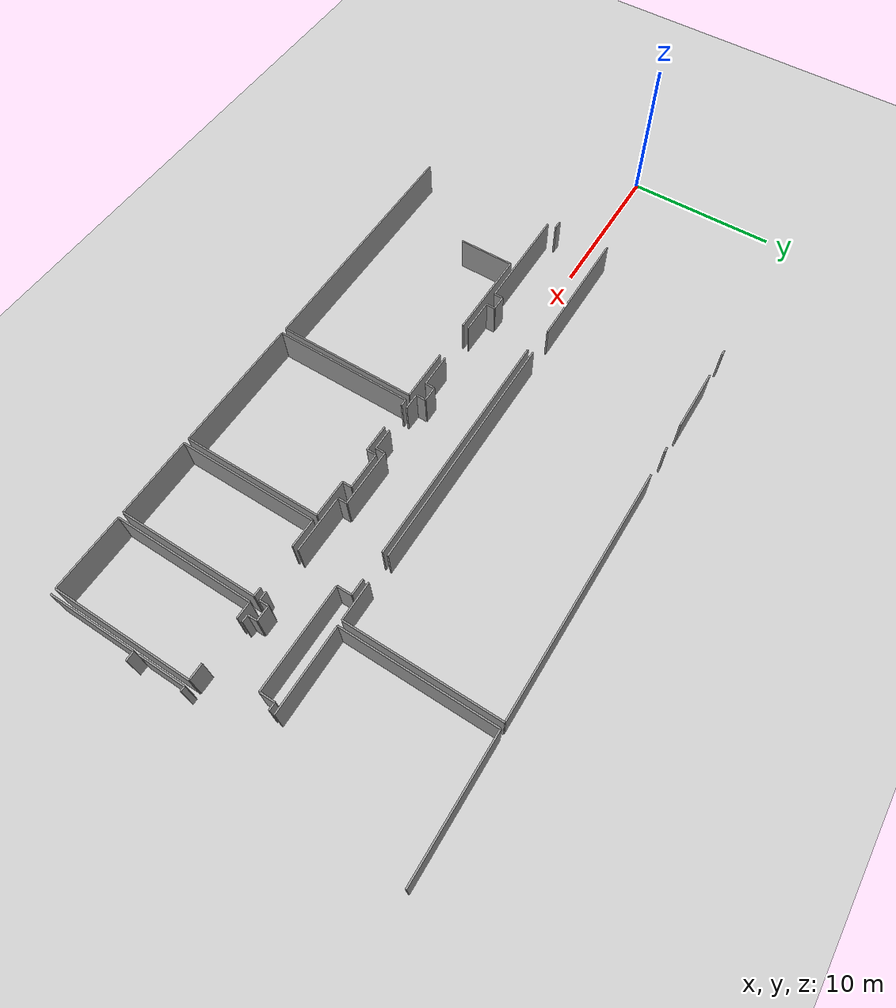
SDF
<sdf version="1.6">
 <world name="default">
  <model name="ground_plane">
   <static>1</static>
   <link name="link">
    <collision name="collision">
     <geometry><plane><normal>0 0 1</normal><size>100 100</size></plane></geometry>
     <surface><friction><ode><mu>100</mu><mu2>50</mu2></ode></friction></surface>
    </collision>
    <visual name="visual">
     <cast_shadows>0</cast_shadows>
     <geometry><plane><normal>0 0 1</normal><size>100 100</size></plane></geometry>
     <material>
      <script><uri>file://media/materials/scripts/gazebo.material</uri><name>Gazebo/Grey</name></script>
     </material>
    </visual>
   </link>
  </model>
  <model name="0510034689_Layout1">
   <static>1</static>
   <link name="Wall_251">
    <collision name="Wall_251_Collision">
     <geometry><box><size>0.60574832699 0.1 2.5</size></box></geometry>
     <pose>0.302874163495 0 1.25 0 0 0</pose>
    </collision>
    <visual name="Wall_251_Visual">
     <pose>0.302874163495 0 1.25 0 0 0</pose>
     <geometry><box><size>0.60574832699 0.1 2.5</size></box></geometry>
     <material>
      <script><uri>file://media/materials/scripts/gazebo.material</uri><name>Gazebo/Grey</name></script>
      <ambient>1 1 1 1</ambient>
     </material>
    </visual>
    <pose>65.0610253683 -14.4321157026 0 0 0 3.14159265359</pose>
   </link>
   <link name="Wall_255">
    <collision name="Wall_255_Collision">
     <geometry><box><size>15.7851186178 0.1 2.5</size></box></geometry>
     <pose>7.89255930889 0 1.25 0 0 0</pose>
    </collision>
    <visual name="Wall_255_Visual">
     <pose>7.89255930889 0 1.25 0 0 0</pose>
     <geometry><box><size>15.7851186178 0.1 2.5</size></box></geometry>
     <material>
      <script><uri>file://media/materials/scripts/gazebo.material</uri><name>Gazebo/Grey</name></script>
      <ambient>1 1 1 1</ambient>
     </material>
    </visual>
    <pose>74.6065427926 -11.0329195597 0 0 0 0.0</pose>
   </link>
   <link name="Wall_256">
    <collision name="Wall_256_Collision">
     <geometry><box><size>1.05552248807 0.1 2.5</size></box></geometry>
     <pose>0.527761244037 0 1.25 0 0 0</pose>
    </collision>
    <visual name="Wall_256_Visual">
     <pose>0.527761244037 0 1.25 0 0 0</pose>
     <geometry><box><size>1.05552248807 0.1 2.5</size></box></geometry>
     <material>
      <script><uri>file://media/materials/scripts/gazebo.material</uri><name>Gazebo/Grey</name></script>
      <ambient>1 1 1 1</ambient>
     </material>
    </visual>
    <pose>92.1903773204 -11.0329195597 0 0 0 0.0</pose>
   </link>
   <link name="Wall_257">
    <collision name="Wall_257_Collision">
     <geometry><box><size>0.978867975293 0.1 2.5</size></box></geometry>
     <pose>0.489433987646 0 1.25 0 0 0</pose>
    </collision>
    <visual name="Wall_257_Visual">
     <pose>0.489433987646 0 1.25 0 0 0</pose>
     <geometry><box><size>0.978867975293 0.1 2.5</size></box></geometry>
     <material>
      <script><uri>file://media/materials/scripts/gazebo.material</uri><name>Gazebo/Grey</name></script>
      <ambient>1 1 1 1</ambient>
     </material>
    </visual>
    <pose>93.2458998085 -11.0329195597 0 0 0 -1.57079632679</pose>
   </link>
   <link name="Wall_258">
    <collision name="Wall_258_Collision">
     <geometry><box><size>6.6311230013 0.1 2.5</size></box></geometry>
     <pose>3.31556150065 0 1.25 0 0 0</pose>
    </collision>
    <visual name="Wall_258_Visual">
     <pose>3.31556150065 0 1.25 0 0 0</pose>
     <geometry><box><size>6.6311230013 0.1 2.5</size></box></geometry>
     <material>
      <script><uri>file://media/materials/scripts/gazebo.material</uri><name>Gazebo/Grey</name></script>
      <ambient>1 1 1 1</ambient>
     </material>
    </visual>
    <pose>93.2458998085 -12.011787535 0 0 0 0.0</pose>
   </link>
   <link name="Wall_259">
    <collision name="Wall_259_Collision">
     <geometry><box><size>0.978867975293 0.1 2.5</size></box></geometry>
     <pose>0.489433987646 0 1.25 0 0 0</pose>
    </collision>
    <visual name="Wall_259_Visual">
     <pose>0.489433987646 0 1.25 0 0 0</pose>
     <geometry><box><size>0.978867975293 0.1 2.5</size></box></geometry>
     <material>
      <script><uri>file://media/materials/scripts/gazebo.material</uri><name>Gazebo/Grey</name></script>
      <ambient>1 1 1 1</ambient>
     </material>
    </visual>
    <pose>99.8770228098 -12.011787535 0 0 0 1.57079632679</pose>
   </link>
   <link name="Wall_260">
    <collision name="Wall_260_Collision">
     <geometry><box><size>0.479852173549 0.1 2.5</size></box></geometry>
     <pose>0.239926086774 0 1.25 0 0 0</pose>
    </collision>
    <visual name="Wall_260_Visual">
     <pose>0.239926086774 0 1.25 0 0 0</pose>
     <geometry><box><size>0.479852173549 0.1 2.5</size></box></geometry>
     <material>
      <script><uri>file://media/materials/scripts/gazebo.material</uri><name>Gazebo/Grey</name></script>
      <ambient>1 1 1 1</ambient>
     </material>
    </visual>
    <pose>99.8770228098 -11.0329195597 0 0 0 0.0</pose>
   </link>
   <link name="Wall_271">
    <collision name="Wall_271_Collision">
     <geometry><box><size>0.475664095864 0.1 2.5</size></box></geometry>
     <pose>0.237832047932 0 1.25 0 0 0</pose>
    </collision>
    <visual name="Wall_271_Visual">
     <pose>0.237832047932 0 1.25 0 0 0</pose>
     <geometry><box><size>0.475664095864 0.1 2.5</size></box></geometry>
     <material>
      <script><uri>file://media/materials/scripts/gazebo.material</uri><name>Gazebo/Grey</name></script>
      <ambient>1 1 1 1</ambient>
     </material>
    </visual>
    <pose>97.4929913154 -15.0398946127 0 0 0 3.14159265359</pose>
   </link>
   <link name="Wall_272">
    <collision name="Wall_272_Collision">
     <geometry><box><size>0.6207238775 0.1 2.5</size></box></geometry>
     <pose>0.31036193875 0 1.25 0 0 0</pose>
    </collision>
    <visual name="Wall_272_Visual">
     <pose>0.31036193875 0 1.25 0 0 0</pose>
     <geometry><box><size>0.6207238775 0.1 2.5</size></box></geometry>
     <material>
      <script><uri>file://media/materials/scripts/gazebo.material</uri><name>Gazebo/Grey</name></script>
      <ambient>1 1 1 1</ambient>
     </material>
    </visual>
    <pose>97.0173272196 -15.0398946127 0 0 0 1.57079632679</pose>
   </link>
   <link name="Wall_273">
    <collision name="Wall_273_Collision">
     <geometry><box><size>0.959704347098 0.1 2.5</size></box></geometry>
     <pose>0.479852173549 0 1.25 0 0 0</pose>
    </collision>
    <visual name="Wall_273_Visual">
     <pose>0.479852173549 0 1.25 0 0 0</pose>
     <geometry><box><size>0.959704347098 0.1 2.5</size></box></geometry>
     <material>
      <script><uri>file://media/materials/scripts/gazebo.material</uri><name>Gazebo/Grey</name></script>
      <ambient>1 1 1 1</ambient>
     </material>
    </visual>
    <pose>97.0173272196 -14.4191707352 0 0 0 3.14159265359</pose>
   </link>
   <link name="Wall_274">
    <collision name="Wall_274_Collision">
     <geometry><box><size>0.60092569208 0.1 2.5</size></box></geometry>
     <pose>0.30046284604 0 1.25 0 0 0</pose>
    </collision>
    <visual name="Wall_274_Visual">
     <pose>0.30046284604 0 1.25 0 0 0</pose>
     <geometry><box><size>0.60092569208 0.1 2.5</size></box></geometry>
     <material>
      <script><uri>file://media/materials/scripts/gazebo.material</uri><name>Gazebo/Grey</name></script>
      <ambient>1 1 1 1</ambient>
     </material>
    </visual>
    <pose>96.0576228725 -14.4191707352 0 0 0 -1.57079632679</pose>
   </link>
   <link name="Wall_275">
    <collision name="Wall_275_Collision">
     <geometry><box><size>0.550668759859 0.1 2.5</size></box></geometry>
     <pose>0.27533437993 0 1.25 0 0 0</pose>
    </collision>
    <visual name="Wall_275_Visual">
     <pose>0.27533437993 0 1.25 0 0 0</pose>
     <geometry><box><size>0.550668759859 0.1 2.5</size></box></geometry>
     <material>
      <script><uri>file://media/materials/scripts/gazebo.material</uri><name>Gazebo/Grey</name></script>
      <ambient>1 1 1 1</ambient>
     </material>
    </visual>
    <pose>96.0576228725 -15.0200964273 0 0 0 3.14159265359</pose>
   </link>
   <link name="Wall_276">
    <collision name="Wall_276_Collision">
     <geometry><box><size>3.71380961506 0.1 2.5</size></box></geometry>
     <pose>1.85690480753 0 1.25 0 0 0</pose>
    </collision>
    <visual name="Wall_276_Visual">
     <pose>1.85690480753 0 1.25 0 0 0</pose>
     <geometry><box><size>3.71380961506 0.1 2.5</size></box></geometry>
     <material>
      <script><uri>file://media/materials/scripts/gazebo.material</uri><name>Gazebo/Grey</name></script>
      <ambient>1 1 1 1</ambient>
     </material>
    </visual>
    <pose>92.7085567504 -15.0200964273 0 0 0 3.14159265359</pose>
   </link>
   <link name="Wall_277">
    <collision name="Wall_277_Collision">
     <geometry><box><size>0.609174936005 0.1 2.5</size></box></geometry>
     <pose>0.304587468002 0 1.25 0 0 0</pose>
    </collision>
    <visual name="Wall_277_Visual">
     <pose>0.304587468002 0 1.25 0 0 0</pose>
     <geometry><box><size>0.609174936005 0.1 2.5</size></box></geometry>
     <material>
      <script><uri>file://media/materials/scripts/gazebo.material</uri><name>Gazebo/Grey</name></script>
      <ambient>1 1 1 1</ambient>
     </material>
    </visual>
    <pose>88.9947471353 -15.0200964273 0 0 0 1.57079632679</pose>
   </link>
   <link name="Wall_278">
    <collision name="Wall_278_Collision">
     <geometry><box><size>3.76178214128 0.1 2.5</size></box></geometry>
     <pose>1.88089107064 0 1.25 0 0 0</pose>
    </collision>
    <visual name="Wall_278_Visual">
     <pose>1.88089107064 0 1.25 0 0 0</pose>
     <geometry><box><size>3.76178214128 0.1 2.5</size></box></geometry>
     <material>
      <script><uri>file://media/materials/scripts/gazebo.material</uri><name>Gazebo/Grey</name></script>
      <ambient>1 1 1 1</ambient>
     </material>
    </visual>
    <pose>88.9947471353 -14.4109214913 0 0 0 3.14159265359</pose>
   </link>
   <link name="Wall_279">
    <collision name="Wall_279_Collision">
     <geometry><box><size>0.633288110555 0.1 2.5</size></box></geometry>
     <pose>0.316644055278 0 1.25 0 0 0</pose>
    </collision>
    <visual name="Wall_279_Visual">
     <pose>0.316644055278 0 1.25 0 0 0</pose>
     <geometry><box><size>0.633288110555 0.1 2.5</size></box></geometry>
     <material>
      <script><uri>file://media/materials/scripts/gazebo.material</uri><name>Gazebo/Grey</name></script>
      <ambient>1 1 1 1</ambient>
     </material>
    </visual>
    <pose>85.232964994 -14.4109214913 0 0 0 -1.57079632679</pose>
   </link>
   <link name="Wall_280">
    <collision name="Wall_280_Collision">
     <geometry><box><size>1.39145708299 0.1 2.5</size></box></geometry>
     <pose>0.695728541496 0 1.25 0 0 0</pose>
    </collision>
    <visual name="Wall_280_Visual">
     <pose>0.695728541496 0 1.25 0 0 0</pose>
     <geometry><box><size>1.39145708299 0.1 2.5</size></box></geometry>
     <material>
      <script><uri>file://media/materials/scripts/gazebo.material</uri><name>Gazebo/Grey</name></script>
      <ambient>1 1 1 1</ambient>
     </material>
    </visual>
    <pose>85.232964994 -15.0442096019 0 0 0 3.14159265359</pose>
   </link>
   <link name="Wall_281">
    <collision name="Wall_281_Collision">
     <geometry><box><size>1.07037112714 0.1 2.5</size></box></geometry>
     <pose>0.535185563569 0 1.25 0 0 0</pose>
    </collision>
    <visual name="Wall_281_Visual">
     <pose>0.535185563569 0 1.25 0 0 0</pose>
     <geometry><box><size>1.07037112714 0.1 2.5</size></box></geometry>
     <material>
      <script><uri>file://media/materials/scripts/gazebo.material</uri><name>Gazebo/Grey</name></script>
      <ambient>1 1 1 1</ambient>
     </material>
    </visual>
    <pose>82.055610057 -15.0442096019 0 0 0 3.14159265359</pose>
   </link>
   <link name="Wall_282">
    <collision name="Wall_282_Collision">
     <geometry><box><size>0.64432940627 0.1 2.5</size></box></geometry>
     <pose>0.322164703135 0 1.25 0 0 0</pose>
    </collision>
    <visual name="Wall_282_Visual">
     <pose>0.322164703135 0 1.25 0 0 0</pose>
     <geometry><box><size>0.64432940627 0.1 2.5</size></box></geometry>
     <material>
      <script><uri>file://media/materials/scripts/gazebo.material</uri><name>Gazebo/Grey</name></script>
      <ambient>1 1 1 1</ambient>
     </material>
    </visual>
    <pose>80.9852389298 -15.0442096019 0 0 0 1.57079632679</pose>
   </link>
   <link name="Wall_283">
    <collision name="Wall_283_Collision">
     <geometry><box><size>0.982167672863 0.1 2.5</size></box></geometry>
     <pose>0.491083836431 0 1.25 0 0 0</pose>
    </collision>
    <visual name="Wall_283_Visual">
     <pose>0.491083836431 0 1.25 0 0 0</pose>
     <geometry><box><size>0.982167672863 0.1 2.5</size></box></geometry>
     <material>
      <script><uri>file://media/materials/scripts/gazebo.material</uri><name>Gazebo/Grey</name></script>
      <ambient>1 1 1 1</ambient>
     </material>
    </visual>
    <pose>80.9852389298 -14.3998801956 0 0 0 3.14159265359</pose>
   </link>
   <link name="Wall_284">
    <collision name="Wall_284_Collision">
     <geometry><box><size>0.628973121425 0.1 2.5</size></box></geometry>
     <pose>0.314486560713 0 1.25 0 0 0</pose>
    </collision>
    <visual name="Wall_284_Visual">
     <pose>0.314486560713 0 1.25 0 0 0</pose>
     <geometry><box><size>0.628973121425 0.1 2.5</size></box></geometry>
     <material>
      <script><uri>file://media/materials/scripts/gazebo.material</uri><name>Gazebo/Grey</name></script>
      <ambient>1 1 1 1</ambient>
     </material>
    </visual>
    <pose>80.003071257 -14.3998801956 0 0 0 -1.57079632679</pose>
   </link>
   <link name="Wall_285">
    <collision name="Wall_285_Collision">
     <geometry><box><size>2.17411996431 0.1 2.5</size></box></geometry>
     <pose>1.08705998216 0 1.25 0 0 0</pose>
    </collision>
    <visual name="Wall_285_Visual">
     <pose>1.08705998216 0 1.25 0 0 0</pose>
     <geometry><box><size>2.17411996431 0.1 2.5</size></box></geometry>
     <material>
      <script><uri>file://media/materials/scripts/gazebo.material</uri><name>Gazebo/Grey</name></script>
      <ambient>1 1 1 1</ambient>
     </material>
    </visual>
    <pose>80.003071257 -15.028853317 0 0 0 3.14159265359</pose>
   </link>
   <link name="Wall_286">
    <collision name="Wall_286_Collision">
     <geometry><box><size>2.2113050177 0.1 2.5</size></box></geometry>
     <pose>1.10565250885 0 1.25 0 0 0</pose>
    </collision>
    <visual name="Wall_286_Visual">
     <pose>1.10565250885 0 1.25 0 0 0</pose>
     <geometry><box><size>2.2113050177 0.1 2.5</size></box></geometry>
     <material>
      <script><uri>file://media/materials/scripts/gazebo.material</uri><name>Gazebo/Grey</name></script>
      <ambient>1 1 1 1</ambient>
     </material>
    </visual>
    <pose>75.1710449 -15.028853317 0 0 0 3.14159265359</pose>
   </link>
   <link name="Wall_287">
    <collision name="Wall_287_Collision">
     <geometry><box><size>0.609682581785 0.1 2.5</size></box></geometry>
     <pose>0.304841290892 0 1.25 0 0 0</pose>
    </collision>
    <visual name="Wall_287_Visual">
     <pose>0.304841290892 0 1.25 0 0 0</pose>
     <geometry><box><size>0.609682581785 0.1 2.5</size></box></geometry>
     <material>
      <script><uri>file://media/materials/scripts/gazebo.material</uri><name>Gazebo/Grey</name></script>
      <ambient>1 1 1 1</ambient>
     </material>
    </visual>
    <pose>72.9597398823 -15.028853317 0 0 0 1.57079632679</pose>
   </link>
   <link name="Wall_288">
    <collision name="Wall_288_Collision">
     <geometry><box><size>0.967953591023 0.1 2.5</size></box></geometry>
     <pose>0.483976795511 0 1.25 0 0 0</pose>
    </collision>
    <visual name="Wall_288_Visual">
     <pose>0.483976795511 0 1.25 0 0 0</pose>
     <geometry><box><size>0.967953591023 0.1 2.5</size></box></geometry>
     <material>
      <script><uri>file://media/materials/scripts/gazebo.material</uri><name>Gazebo/Grey</name></script>
      <ambient>1 1 1 1</ambient>
     </material>
    </visual>
    <pose>72.9597398823 -14.4191707352 0 0 0 3.14159265359</pose>
   </link>
   <link name="Wall_289">
    <collision name="Wall_289_Collision">
     <geometry><box><size>0.58417338134 0.1 2.5</size></box></geometry>
     <pose>0.29208669067 0 1.25 0 0 0</pose>
    </collision>
    <visual name="Wall_289_Visual">
     <pose>0.29208669067 0 1.25 0 0 0</pose>
     <geometry><box><size>0.58417338134 0.1 2.5</size></box></geometry>
     <material>
      <script><uri>file://media/materials/scripts/gazebo.material</uri><name>Gazebo/Grey</name></script>
      <ambient>1 1 1 1</ambient>
     </material>
    </visual>
    <pose>71.9917862913 -14.4191707352 0 0 0 -1.57079632679</pose>
   </link>
   <link name="Wall_290">
    <collision name="Wall_290_Collision">
     <geometry><box><size>6.93079569912 0.1 2.5</size></box></geometry>
     <pose>3.46539784956 0 1.25 0 0 0</pose>
    </collision>
    <visual name="Wall_290_Visual">
     <pose>3.46539784956 0 1.25 0 0 0</pose>
     <geometry><box><size>6.93079569912 0.1 2.5</size></box></geometry>
     <material>
      <script><uri>file://media/materials/scripts/gazebo.material</uri><name>Gazebo/Grey</name></script>
      <ambient>1 1 1 1</ambient>
     </material>
    </visual>
    <pose>71.9917862913 -15.0033441166 0 0 0 -3.13842480423</pose>
   </link>
   <link name="Wall_294">
    <collision name="Wall_294_Collision">
     <geometry><box><size>0.345579864738 0.1 2.5</size></box></geometry>
     <pose>0.172789932369 0 1.25 0 0 0</pose>
    </collision>
    <visual name="Wall_294_Visual">
     <pose>0.172789932369 0 1.25 0 0 0</pose>
     <geometry><box><size>0.345579864738 0.1 2.5</size></box></geometry>
     <material>
      <script><uri>file://media/materials/scripts/gazebo.material</uri><name>Gazebo/Grey</name></script>
      <ambient>1 1 1 1</ambient>
     </material>
    </visual>
    <pose>68.2858451858 -0.737609318346 0 0 0 0.0</pose>
   </link>
   <link name="Wall_295">
    <collision name="Wall_295_Collision">
     <geometry><box><size>4.14556235096 0.1 2.5</size></box></geometry>
     <pose>2.07278117548 0 1.25 0 0 0</pose>
    </collision>
    <visual name="Wall_295_Visual">
     <pose>2.07278117548 0 1.25 0 0 0</pose>
     <geometry><box><size>4.14556235096 0.1 2.5</size></box></geometry>
     <material>
      <script><uri>file://media/materials/scripts/gazebo.material</uri><name>Gazebo/Grey</name></script>
      <ambient>1 1 1 1</ambient>
     </material>
    </visual>
    <pose>70.3971439848 -0.737609318346 0 0 0 0.0</pose>
   </link>
   <link name="Wall_296">
    <collision name="Wall_296_Collision">
     <geometry><box><size>0.326289325098 0.1 2.5</size></box></geometry>
     <pose>0.163144662549 0 1.25 0 0 0</pose>
    </collision>
    <visual name="Wall_296_Visual">
     <pose>0.163144662549 0 1.25 0 0 0</pose>
     <geometry><box><size>0.326289325098 0.1 2.5</size></box></geometry>
     <material>
      <script><uri>file://media/materials/scripts/gazebo.material</uri><name>Gazebo/Grey</name></script>
      <ambient>1 1 1 1</ambient>
     </material>
    </visual>
    <pose>76.3180705399 -0.737609318346 0 0 0 0.0</pose>
   </link>
   <link name="Wall_297">
    <collision name="Wall_297_Collision">
     <geometry><box><size>16.248345392 0.1 2.5</size></box></geometry>
     <pose>8.12417269602 0 1.25 0 0 0</pose>
    </collision>
    <visual name="Wall_297_Visual">
     <pose>8.12417269602 0 1.25 0 0 0</pose>
     <geometry><box><size>16.248345392 0.1 2.5</size></box></geometry>
     <material>
      <script><uri>file://media/materials/scripts/gazebo.material</uri><name>Gazebo/Grey</name></script>
      <ambient>1 1 1 1</ambient>
     </material>
    </visual>
    <pose>78.3907882597 -0.737609318346 0 0 0 0.0</pose>
   </link>
   <link name="Wall_298">
    <collision name="Wall_298_Collision">
     <geometry><box><size>9.93488173757 0.1 2.5</size></box></geometry>
     <pose>4.96744086878 0 1.25 0 0 0</pose>
    </collision>
    <visual name="Wall_298_Visual">
     <pose>4.96744086878 0 1.25 0 0 0</pose>
     <geometry><box><size>9.93488173757 0.1 2.5</size></box></geometry>
     <material>
      <script><uri>file://media/materials/scripts/gazebo.material</uri><name>Gazebo/Grey</name></script>
      <ambient>1 1 1 1</ambient>
     </material>
    </visual>
    <pose>94.6391336517 -0.737609318346 0 0 0 -1.57079632679</pose>
   </link>
   <link name="Wall_299">
    <collision name="Wall_299_Collision">
     <geometry><box><size>2.44507589939 0.1 2.5</size></box></geometry>
     <pose>1.22253794969 0 1.25 0 0 0</pose>
    </collision>
    <visual name="Wall_299_Visual">
     <pose>1.22253794969 0 1.25 0 0 0</pose>
     <geometry><box><size>2.44507589939 0.1 2.5</size></box></geometry>
     <material>
      <script><uri>file://media/materials/scripts/gazebo.material</uri><name>Gazebo/Grey</name></script>
      <ambient>1 1 1 1</ambient>
     </material>
    </visual>
    <pose>94.6391336517 -10.6724910559 0 0 0 3.14159265359</pose>
   </link>
   <link name="Wall_300">
    <collision name="Wall_300_Collision">
     <geometry><box><size>15.7953984448 0.1 2.5</size></box></geometry>
     <pose>7.89769922241 0 1.25 0 0 0</pose>
    </collision>
    <visual name="Wall_300_Visual">
     <pose>7.89769922241 0 1.25 0 0 0</pose>
     <geometry><box><size>15.7953984448 0.1 2.5</size></box></geometry>
     <material>
      <script><uri>file://media/materials/scripts/gazebo.material</uri><name>Gazebo/Grey</name></script>
      <ambient>1 1 1 1</ambient>
     </material>
    </visual>
    <pose>90.3958494881 -10.6724910559 0 0 0 3.14159265359</pose>
   </link>
   <link name="Wall_301">
    <collision name="Wall_301_Collision">
     <geometry><box><size>8.03163932731 0.1 2.5</size></box></geometry>
     <pose>4.01581966366 0 1.25 0 0 0</pose>
    </collision>
    <visual name="Wall_301_Visual">
     <pose>4.01581966366 0 1.25 0 0 0</pose>
     <geometry><box><size>8.03163932731 0.1 2.5</size></box></geometry>
     <material>
      <script><uri>file://media/materials/scripts/gazebo.material</uri><name>Gazebo/Grey</name></script>
      <ambient>1 1 1 1</ambient>
     </material>
    </visual>
    <pose>72.8031311592 -10.6724910559 0 0 0 -3.13811633039</pose>
   </link>
   <link name="Wall_302">
    <collision name="Wall_302_Collision">
     <geometry><box><size>9.92269823885 0.1 2.5</size></box></geometry>
     <pose>4.96134911942 0 1.25 0 0 0</pose>
    </collision>
    <visual name="Wall_302_Visual">
     <pose>4.96134911942 0 1.25 0 0 0</pose>
     <geometry><box><size>9.92269823885 0.1 2.5</size></box></geometry>
     <material>
      <script><uri>file://media/materials/scripts/gazebo.material</uri><name>Gazebo/Grey</name></script>
      <ambient>1 1 1 1</ambient>
     </material>
    </visual>
    <pose>95.0116187428 -10.6779482481 0 0 0 1.57079632679</pose>
   </link>
   <link name="Wall_303">
    <collision name="Wall_303_Collision">
     <geometry><box><size>8.42818906252 0.1 2.5</size></box></geometry>
     <pose>4.21409453126 0 1.25 0 0 0</pose>
    </collision>
    <visual name="Wall_303_Visual">
     <pose>4.21409453126 0 1.25 0 0 0</pose>
     <geometry><box><size>8.42818906252 0.1 2.5</size></box></geometry>
     <material>
      <script><uri>file://media/materials/scripts/gazebo.material</uri><name>Gazebo/Grey</name></script>
      <ambient>1 1 1 1</ambient>
     </material>
    </visual>
    <pose>95.0116187428 -0.755250009201 0 0 0 0.0</pose>
   </link>
   <link name="Wall_306">
    <collision name="Wall_306_Collision">
     <geometry><box><size>5.38358626285 0.1 2.5</size></box></geometry>
     <pose>2.69179313142 0 1.25 0 0 0</pose>
    </collision>
    <visual name="Wall_306_Visual">
     <pose>2.69179313142 0 1.25 0 0 0</pose>
     <geometry><box><size>5.38358626285 0.1 2.5</size></box></geometry>
     <material>
      <script><uri>file://media/materials/scripts/gazebo.material</uri><name>Gazebo/Grey</name></script>
      <ambient>1 1 1 1</ambient>
     </material>
    </visual>
    <pose>100.39520224 -10.6724910559 0 0 0 -3.14057898114</pose>
   </link>
   <link name="Wall_326">
    <collision name="Wall_326_Collision">
     <geometry><box><size>5.83868793872 0.1 2.5</size></box></geometry>
     <pose>2.91934396936 0 1.25 0 0 0</pose>
    </collision>
    <visual name="Wall_326_Visual">
     <pose>2.91934396936 0 1.25 0 0 0</pose>
     <geometry><box><size>5.83868793872 0.1 2.5</size></box></geometry>
     <material>
      <script><uri>file://media/materials/scripts/gazebo.material</uri><name>Gazebo/Grey</name></script>
      <ambient>1 1 1 1</ambient>
     </material>
    </visual>
    <pose>101.652387014 -24.6406185156 0 0 0 1.57079632679</pose>
   </link>
   <link name="Wall_327">
    <collision name="Wall_327_Collision">
     <geometry><box><size>0.587599990355 0.1 2.5</size></box></geometry>
     <pose>0.293799995177 0 1.25 0 0 0</pose>
    </collision>
    <visual name="Wall_327_Visual">
     <pose>0.293799995177 0 1.25 0 0 0</pose>
     <geometry><box><size>0.587599990355 0.1 2.5</size></box></geometry>
     <material>
      <script><uri>file://media/materials/scripts/gazebo.material</uri><name>Gazebo/Grey</name></script>
      <ambient>1 1 1 1</ambient>
     </material>
    </visual>
    <pose>101.652387014 -18.8019305769 0 0 0 0.0</pose>
   </link>
   <link name="Wall_342">
    <collision name="Wall_342_Collision">
     <geometry><box><size>3.0630077251 0.1 2.5</size></box></geometry>
     <pose>1.53150386255 0 1.25 0 0 0</pose>
    </collision>
    <visual name="Wall_342_Visual">
     <pose>1.53150386255 0 1.25 0 0 0</pose>
     <geometry><box><size>3.0630077251 0.1 2.5</size></box></geometry>
     <material>
      <script><uri>file://media/materials/scripts/gazebo.material</uri><name>Gazebo/Grey</name></script>
      <ambient>1 1 1 1</ambient>
     </material>
    </visual>
    <pose>101.647945113 -18.4592696754 0 0 0 1.57079632679</pose>
   </link>
   <link name="Wall_343">
    <collision name="Wall_343_Collision">
     <geometry><box><size>0.314994206493 0.1 2.5</size></box></geometry>
     <pose>0.157497103246 0 1.25 0 0 0</pose>
    </collision>
    <visual name="Wall_343_Visual">
     <pose>0.157497103246 0 1.25 0 0 0</pose>
     <geometry><box><size>0.314994206493 0.1 2.5</size></box></geometry>
     <material>
      <script><uri>file://media/materials/scripts/gazebo.material</uri><name>Gazebo/Grey</name></script>
      <ambient>1 1 1 1</ambient>
     </material>
    </visual>
    <pose>101.647945113 -15.3962619503 0 0 0 0.0</pose>
   </link>
   <link name="Wall_362">
    <collision name="Wall_362_Collision">
     <geometry><box><size>9.25273272069 0.1 2.5</size></box></geometry>
     <pose>4.62636636034 0 1.25 0 0 0</pose>
    </collision>
    <visual name="Wall_362_Visual">
     <pose>4.62636636034 0 1.25 0 0 0</pose>
     <geometry><box><size>9.25273272069 0.1 2.5</size></box></geometry>
     <material>
      <script><uri>file://media/materials/scripts/gazebo.material</uri><name>Gazebo/Grey</name></script>
      <ambient>1 1 1 1</ambient>
     </material>
    </visual>
    <pose>96.4021874457 -24.6520405457 0 0 0 1.57079632679</pose>
   </link>
   <link name="Wall_363">
    <collision name="Wall_363_Collision">
     <geometry><box><size>1.07570140783 0.1 2.5</size></box></geometry>
     <pose>0.537850703914 0 1.25 0 0 0</pose>
    </collision>
    <visual name="Wall_363_Visual">
     <pose>0.537850703914 0 1.25 0 0 0</pose>
     <geometry><box><size>1.07570140783 0.1 2.5</size></box></geometry>
     <material>
      <script><uri>file://media/materials/scripts/gazebo.material</uri><name>Gazebo/Grey</name></script>
      <ambient>1 1 1 1</ambient>
     </material>
    </visual>
    <pose>96.4021874457 -15.399307825 0 0 0 0.0</pose>
   </link>
   <link name="Wall_364">
    <collision name="Wall_364_Collision">
     <geometry><box><size>1.01579920579 0.1 2.5</size></box></geometry>
     <pose>0.507899602894 0 1.25 0 0 0</pose>
    </collision>
    <visual name="Wall_364_Visual">
     <pose>0.507899602894 0 1.25 0 0 0</pose>
     <geometry><box><size>1.01579920579 0.1 2.5</size></box></geometry>
     <material>
      <script><uri>file://media/materials/scripts/gazebo.material</uri><name>Gazebo/Grey</name></script>
      <ambient>1 1 1 1</ambient>
     </material>
    </visual>
    <pose>100.27577857 -15.399307825 0 0 0 0.0</pose>
   </link>
   <link name="Wall_365">
    <collision name="Wall_365_Collision">
     <geometry><box><size>9.25463639236 0.1 2.5</size></box></geometry>
     <pose>4.62731819618 0 1.25 0 0 0</pose>
    </collision>
    <visual name="Wall_365_Visual">
     <pose>4.62731819618 0 1.25 0 0 0</pose>
     <geometry><box><size>9.25463639236 0.1 2.5</size></box></geometry>
     <material>
      <script><uri>file://media/materials/scripts/gazebo.material</uri><name>Gazebo/Grey</name></script>
      <ambient>1 1 1 1</ambient>
     </material>
    </visual>
    <pose>101.291577776 -15.399307825 0 0 0 -1.57079632679</pose>
   </link>
   <link name="Wall_366">
    <collision name="Wall_366_Collision">
     <geometry><box><size>4.8893907007 0.1 2.5</size></box></geometry>
     <pose>2.44469535035 0 1.25 0 0 0</pose>
    </collision>
    <visual name="Wall_366_Visual">
     <pose>2.44469535035 0 1.25 0 0 0</pose>
     <geometry><box><size>4.8893907007 0.1 2.5</size></box></geometry>
     <material>
      <script><uri>file://media/materials/scripts/gazebo.material</uri><name>Gazebo/Grey</name></script>
      <ambient>1 1 1 1</ambient>
     </material>
    </visual>
    <pose>101.291577776 -24.6539442173 0 0 0 3.14120330616</pose>
   </link>
   <link name="Wall_367">
    <collision name="Wall_367_Collision">
     <geometry><box><size>9.27113488021 0.1 2.5</size></box></geometry>
     <pose>4.63556744011 0 1.25 0 0 0</pose>
    </collision>
    <visual name="Wall_367_Visual">
     <pose>4.63556744011 0 1.25 0 0 0</pose>
     <geometry><box><size>9.27113488021 0.1 2.5</size></box></geometry>
     <material>
      <script><uri>file://media/materials/scripts/gazebo.material</uri><name>Gazebo/Grey</name></script>
      <ambient>1 1 1 1</ambient>
     </material>
    </visual>
    <pose>90.8404202799 -24.6722194654 0 0 0 1.57079632679</pose>
   </link>
   <link name="Wall_368">
    <collision name="Wall_368_Collision">
     <geometry><box><size>1.86179089816 0.1 2.5</size></box></geometry>
     <pose>0.930895449082 0 1.25 0 0 0</pose>
    </collision>
    <visual name="Wall_368_Visual">
     <pose>0.930895449082 0 1.25 0 0 0</pose>
     <geometry><box><size>1.86179089816 0.1 2.5</size></box></geometry>
     <material>
      <script><uri>file://media/materials/scripts/gazebo.material</uri><name>Gazebo/Grey</name></script>
      <ambient>1 1 1 1</ambient>
     </material>
    </visual>
    <pose>90.8404202799 -15.4010845852 0 0 0 0.0</pose>
   </link>
   <link name="Wall_369">
    <collision name="Wall_369_Collision">
     <geometry><box><size>0.551810962864 0.1 2.5</size></box></geometry>
     <pose>0.275905481432 0 1.25 0 0 0</pose>
    </collision>
    <visual name="Wall_369_Visual">
     <pose>0.275905481432 0 1.25 0 0 0</pose>
     <geometry><box><size>0.551810962864 0.1 2.5</size></box></geometry>
     <material>
      <script><uri>file://media/materials/scripts/gazebo.material</uri><name>Gazebo/Grey</name></script>
      <ambient>1 1 1 1</ambient>
     </material>
    </visual>
    <pose>95.4820794694 -15.4010845852 0 0 0 0.0</pose>
   </link>
   <link name="Wall_370">
    <collision name="Wall_370_Collision">
     <geometry><box><size>9.24867155445 0.1 2.5</size></box></geometry>
     <pose>4.62433577722 0 1.25 0 0 0</pose>
    </collision>
    <visual name="Wall_370_Visual">
     <pose>4.62433577722 0 1.25 0 0 0</pose>
     <geometry><box><size>9.24867155445 0.1 2.5</size></box></geometry>
     <material>
      <script><uri>file://media/materials/scripts/gazebo.material</uri><name>Gazebo/Grey</name></script>
      <ambient>1 1 1 1</ambient>
     </material>
    </visual>
    <pose>96.0338904323 -15.4010845852 0 0 0 -1.57079632679</pose>
   </link>
   <link name="Wall_371">
    <collision name="Wall_371_Collision">
     <geometry><box><size>5.19351873244 0.1 2.5</size></box></geometry>
     <pose>2.59675936622 0 1.25 0 0 0</pose>
    </collision>
    <visual name="Wall_371_Visual">
     <pose>2.59675936622 0 1.25 0 0 0</pose>
     <geometry><box><size>5.19351873244 0.1 2.5</size></box></geometry>
     <material>
      <script><uri>file://media/materials/scripts/gazebo.material</uri><name>Gazebo/Grey</name></script>
      <ambient>1 1 1 1</ambient>
     </material>
    </visual>
    <pose>96.0338904323 -24.6497561397 0 0 0 -3.13726737877</pose>
   </link>
   <link name="Wall_372">
    <collision name="Wall_372_Collision">
     <geometry><box><size>9.25907829294 0.1 2.5</size></box></geometry>
     <pose>4.62953914647 0 1.25 0 0 0</pose>
    </collision>
    <visual name="Wall_372_Visual">
     <pose>4.62953914647 0 1.25 0 0 0</pose>
     <geometry><box><size>9.25907829294 0.1 2.5</size></box></geometry>
     <material>
      <script><uri>file://media/materials/scripts/gazebo.material</uri><name>Gazebo/Grey</name></script>
      <ambient>1 1 1 1</ambient>
     </material>
    </visual>
    <pose>81.5888297623 -24.6577515607 0 0 0 1.57079632679</pose>
   </link>
   <link name="Wall_373">
    <collision name="Wall_373_Collision">
     <geometry><box><size>0.471729841069 0.1 2.5</size></box></geometry>
     <pose>0.235864920534 0 1.25 0 0 0</pose>
    </collision>
    <visual name="Wall_373_Visual">
     <pose>0.235864920534 0 1.25 0 0 0</pose>
     <geometry><box><size>0.471729841069 0.1 2.5</size></box></geometry>
     <material>
      <script><uri>file://media/materials/scripts/gazebo.material</uri><name>Gazebo/Grey</name></script>
      <ambient>1 1 1 1</ambient>
     </material>
    </visual>
    <pose>81.5888297623 -15.3986732678 0 0 0 0.0</pose>
   </link>
   <link name="Wall_374">
    <collision name="Wall_374_Collision">
     <geometry><box><size>1.77536420412 0.1 2.5</size></box></geometry>
     <pose>0.88768210206 0 1.25 0 0 0</pose>
    </collision>
    <visual name="Wall_374_Visual">
     <pose>0.88768210206 0 1.25 0 0 0</pose>
     <geometry><box><size>1.77536420412 0.1 2.5</size></box></geometry>
     <material>
      <script><uri>file://media/materials/scripts/gazebo.material</uri><name>Gazebo/Grey</name></script>
      <ambient>1 1 1 1</ambient>
     </material>
    </visual>
    <pose>83.8223442828 -15.3986732678 0 0 0 0.0</pose>
   </link>
   <link name="Wall_375">
    <collision name="Wall_375_Collision">
     <geometry><box><size>0.623135194955 0.1 2.5</size></box></geometry>
     <pose>0.311567597478 0 1.25 0 0 0</pose>
    </collision>
    <visual name="Wall_375_Visual">
     <pose>0.311567597478 0 1.25 0 0 0</pose>
     <geometry><box><size>0.623135194955 0.1 2.5</size></box></geometry>
     <material>
      <script><uri>file://media/materials/scripts/gazebo.material</uri><name>Gazebo/Grey</name></script>
      <ambient>1 1 1 1</ambient>
     </material>
    </visual>
    <pose>85.5977084869 -15.3986732678 0 0 0 1.57079632679</pose>
   </link>
   <link name="Wall_376">
    <collision name="Wall_376_Collision">
     <geometry><box><size>2.43746121269 0.1 2.5</size></box></geometry>
     <pose>1.21873060634 0 1.25 0 0 0</pose>
    </collision>
    <visual name="Wall_376_Visual">
     <pose>1.21873060634 0 1.25 0 0 0</pose>
     <geometry><box><size>2.43746121269 0.1 2.5</size></box></geometry>
     <material>
      <script><uri>file://media/materials/scripts/gazebo.material</uri><name>Gazebo/Grey</name></script>
      <ambient>1 1 1 1</ambient>
     </material>
    </visual>
    <pose>85.5977084869 -14.7755380728 0 0 0 0.0</pose>
   </link>
   <link name="Wall_377">
    <collision name="Wall_377_Collision">
     <geometry><box><size>0.61412448236 0.1 2.5</size></box></geometry>
     <pose>0.30706224118 0 1.25 0 0 0</pose>
    </collision>
    <visual name="Wall_377_Visual">
     <pose>0.30706224118 0 1.25 0 0 0</pose>
     <geometry><box><size>0.61412448236 0.1 2.5</size></box></geometry>
     <material>
      <script><uri>file://media/materials/scripts/gazebo.material</uri><name>Gazebo/Grey</name></script>
      <ambient>1 1 1 1</ambient>
     </material>
    </visual>
    <pose>88.0351696996 -14.7755380728 0 0 0 -1.57079632679</pose>
   </link>
   <link name="Wall_378">
    <collision name="Wall_378_Collision">
     <geometry><box><size>2.44431443072 0.1 2.5</size></box></geometry>
     <pose>1.22215721536 0 1.25 0 0 0</pose>
    </collision>
    <visual name="Wall_378_Visual">
     <pose>1.22215721536 0 1.25 0 0 0</pose>
     <geometry><box><size>2.44431443072 0.1 2.5</size></box></geometry>
     <material>
      <script><uri>file://media/materials/scripts/gazebo.material</uri><name>Gazebo/Grey</name></script>
      <ambient>1 1 1 1</ambient>
     </material>
    </visual>
    <pose>88.0351696996 -15.3896625552 0 0 0 0.0</pose>
   </link>
   <link name="Wall_379">
    <collision name="Wall_379_Collision">
     <geometry><box><size>9.25133669479 0.1 2.5</size></box></geometry>
     <pose>4.6256683474 0 1.25 0 0 0</pose>
    </collision>
    <visual name="Wall_379_Visual">
     <pose>4.6256683474 0 1.25 0 0 0</pose>
     <geometry><box><size>9.25133669479 0.1 2.5</size></box></geometry>
     <material>
      <script><uri>file://media/materials/scripts/gazebo.material</uri><name>Gazebo/Grey</name></script>
      <ambient>1 1 1 1</ambient>
     </material>
    </visual>
    <pose>90.4794841304 -15.3896625552 0 0 0 -1.57079632679</pose>
   </link>
   <link name="Wall_380">
    <collision name="Wall_380_Collision">
     <geometry><box><size>8.89067015095 0.1 2.5</size></box></geometry>
     <pose>4.44533507547 0 1.25 0 0 0</pose>
    </collision>
    <visual name="Wall_380_Visual">
     <pose>4.44533507547 0 1.25 0 0 0</pose>
     <geometry><box><size>8.89067015095 0.1 2.5</size></box></geometry>
     <material>
      <script><uri>file://media/materials/scripts/gazebo.material</uri><name>Gazebo/Grey</name></script>
      <ambient>1 1 1 1</ambient>
     </material>
    </visual>
    <pose>90.4794841304 -24.64099925 0 0 0 -3.13970839511</pose>
   </link>
   <link name="Wall_383">
    <collision name="Wall_383_Collision">
     <geometry><box><size>3.7026414079 0.1 2.5</size></box></geometry>
     <pose>1.85132070395 0 1.25 0 0 0</pose>
    </collision>
    <visual name="Wall_383_Visual">
     <pose>1.85132070395 0 1.25 0 0 0</pose>
     <geometry><box><size>3.7026414079 0.1 2.5</size></box></geometry>
     <material>
      <script><uri>file://media/materials/scripts/gazebo.material</uri><name>Gazebo/Grey</name></script>
      <ambient>1 1 1 1</ambient>
     </material>
    </visual>
    <pose>69.3258844776 -19.1067718678 0 0 0 1.57079632679</pose>
   </link>
   <link name="Wall_384">
    <collision name="Wall_384_Collision">
     <geometry><box><size>5.8544249579 0.1 2.5</size></box></geometry>
     <pose>2.92721247895 0 1.25 0 0 0</pose>
    </collision>
    <visual name="Wall_384_Visual">
     <pose>2.92721247895 0 1.25 0 0 0</pose>
     <geometry><box><size>5.8544249579 0.1 2.5</size></box></geometry>
     <material>
      <script><uri>file://media/materials/scripts/gazebo.material</uri><name>Gazebo/Grey</name></script>
      <ambient>1 1 1 1</ambient>
     </material>
    </visual>
    <pose>69.3258844776 -15.4041304599 0 0 0 0.0</pose>
   </link>
   <link name="Wall_385">
    <collision name="Wall_385_Collision">
     <geometry><box><size>3.42064417711 0.1 2.5</size></box></geometry>
     <pose>1.71032208856 0 1.25 0 0 0</pose>
    </collision>
    <visual name="Wall_385_Visual">
     <pose>1.71032208856 0 1.25 0 0 0</pose>
     <geometry><box><size>3.42064417711 0.1 2.5</size></box></geometry>
     <material>
      <script><uri>file://media/materials/scripts/gazebo.material</uri><name>Gazebo/Grey</name></script>
      <ambient>1 1 1 1</ambient>
     </material>
    </visual>
    <pose>77.7996347489 -15.4041304599 0 0 0 0.0</pose>
   </link>
   <link name="Wall_386">
    <collision name="Wall_386_Collision">
     <geometry><box><size>9.24791008578 0.1 2.5</size></box></geometry>
     <pose>4.62395504289 0 1.25 0 0 0</pose>
    </collision>
    <visual name="Wall_386_Visual">
     <pose>4.62395504289 0 1.25 0 0 0</pose>
     <geometry><box><size>9.24791008578 0.1 2.5</size></box></geometry>
     <material>
      <script><uri>file://media/materials/scripts/gazebo.material</uri><name>Gazebo/Grey</name></script>
      <ambient>1 1 1 1</ambient>
     </material>
    </visual>
    <pose>81.220278926 -15.4041304599 0 0 0 -1.57079632679</pose>
   </link>
   <link name="Wall_387">
    <collision name="Wall_387_Collision">
     <geometry><box><size>16.4554701636 0.1 2.5</size></box></geometry>
     <pose>8.2277350818 0 1.25 0 0 0</pose>
    </collision>
    <visual name="Wall_387_Visual">
     <pose>8.2277350818 0 1.25 0 0 0</pose>
     <geometry><box><size>16.4554701636 0.1 2.5</size></box></geometry>
     <material>
      <script><uri>file://media/materials/scripts/gazebo.material</uri><name>Gazebo/Grey</name></script>
      <ambient>1 1 1 1</ambient>
     </material>
    </visual>
    <pose>81.220278926 -24.6520405457 0 0 0 3.14079056215</pose>
   </link>
   <pose>-56.4 12.3396063334 0 0 0 0</pose>
  </model>
 </world>
</sdf>
